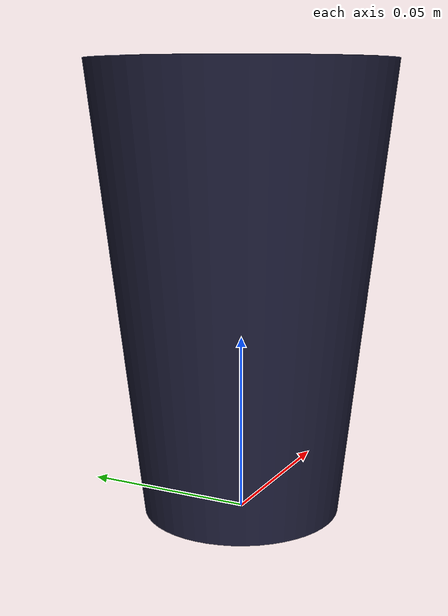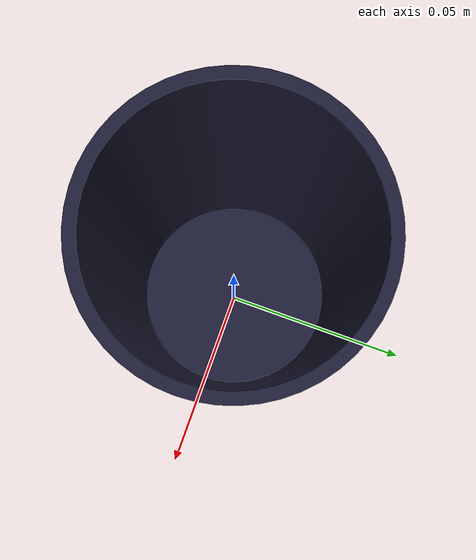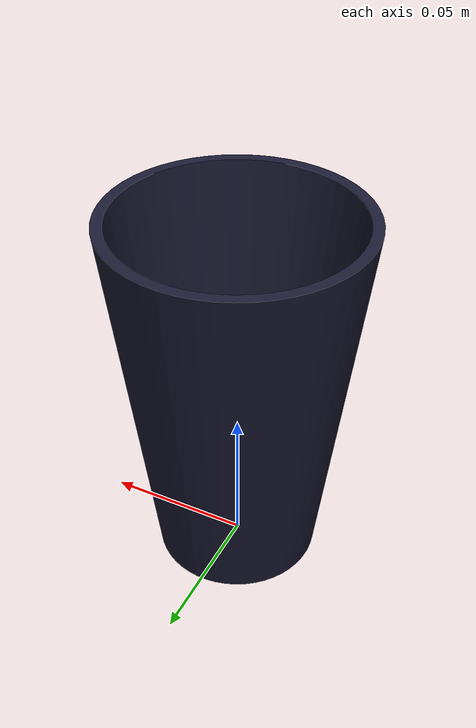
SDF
<?xml version="1.0" ?>
<sdf version="1.7">
    <model name="drinking_cup">
        <static>false</static> <!-- Cup can move if needed -->
        <pose>0 0 0 0 0 0</pose>

        <!-- Link -->
        <link name="cup_link">

            <!-- Inertial properties: mass and inertia tensor -->
            <inertial>
                <mass>0.02</mass> <!-- 20g in kilograms -->
                <inertia>
                    <ixx>0.001</ixx> <!-- Approximated inertia values -->
                    <ixy>0.0</ixy>
                    <ixz>0.0</ixz>
                    <iyy>0.001</iyy>
                    <iyz>0.0</iyz>
                    <izz>0.001</izz>
                </inertia>
            </inertial>

            <!-- Visual properties -->
            <visual name="visual">
                <geometry>
                    <mesh>
                        <uri>model://drinking_cup/meshes/drinking_cup.stl</uri>
                        <scale>0.01 0.01 0.01</scale>
                    </mesh>
                </geometry>
                <material>
                    <ambient>0.1 0.1 0.1 1</ambient>
                    <diffuse>0.1 0.1 0.2 1</diffuse>
                    <specular>0 0 0 0</specular>
                    <emissive>0 0 0 1</emissive>
                </material>
            </visual>

            <!-- Collision properties -->
            <collision name="collision">
                <geometry>
                    <mesh>
                        <uri>model://drinking_cup/meshes/drinking_cup.stl</uri>
                        <scale>0.01 0.01 0.01</scale>
                    </mesh>
                </geometry>
                <surface>
                    <friction>
                        <ode>
                            <mu>0.5</mu>
                            <mu2>0.5</mu2>
                        </ode>
                    </friction>
                </surface>
            </collision>
        </link>
    </model>
</sdf>
